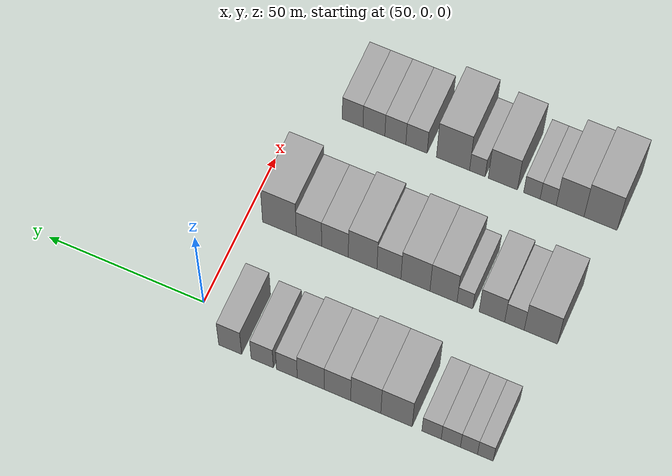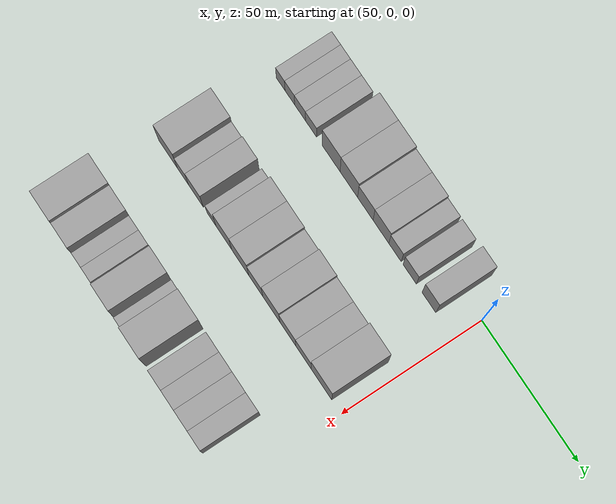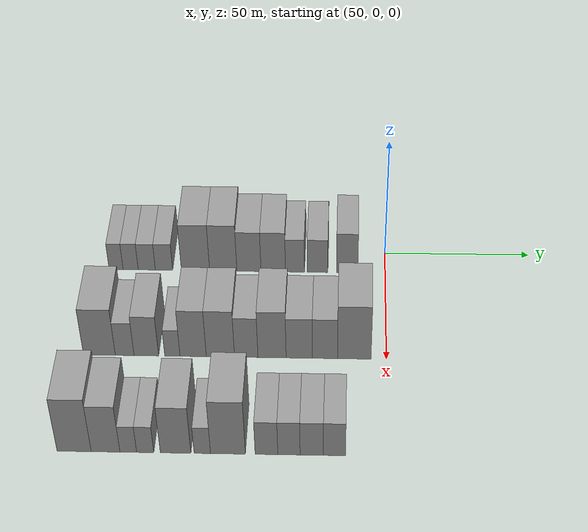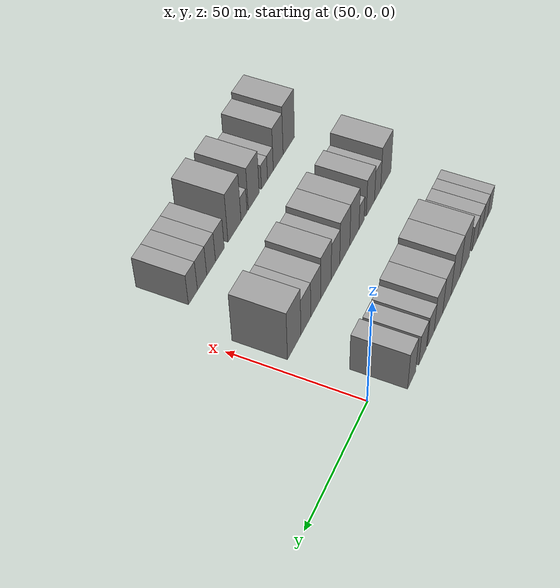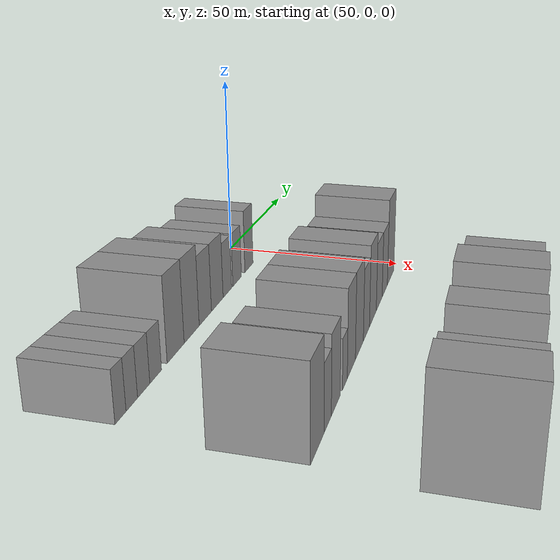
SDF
<sdf version="1.6">
 <world name="default">
  <model name="building_35">
   <static>1</static>
   <pose>50.0000 -92.8020 0 0.000000 0.000000 0.000000</pose>
   <link name="link">
    <pose>0 0 6.00 0 0 0</pose>
    <collision name="collision"><geometry><box><size>20.0000 4.8028 12.0000</size></box></geometry></collision>
    <visual name="visual">
     <cast_shadows>0</cast_shadows>
     <geometry><box><size>20.0000 4.8028 12.0000</size></box></geometry>
     <material>
      <script>
       <uri>model://grey_wall/materials/scripts</uri>
       <uri>model://grey_wall/materials/textures</uri>
       <name>vrc/grey_wall</name>
      </script>
     </material>
    </visual>
   </link>
  </model>
  <model name="building_36">
   <static>1</static>
   <pose>50.0000 -87.7829 0 0.000000 0.000000 0.000000</pose>
   <link name="link">
    <pose>0 0 6.00 0 0 0</pose>
    <collision name="collision"><geometry><box><size>20.0000 5.2355 12.0000</size></box></geometry></collision>
    <visual name="visual">
     <cast_shadows>0</cast_shadows>
     <geometry><box><size>20.0000 5.2355 12.0000</size></box></geometry>
     <material>
      <script>
       <uri>model://grey_wall/materials/scripts</uri>
       <uri>model://grey_wall/materials/textures</uri>
       <name>vrc/grey_wall</name>
      </script>
     </material>
    </visual>
   </link>
  </model>
  <model name="building_37">
   <static>1</static>
   <pose>50.0000 -82.2030 0 0.000000 0.000000 0.000000</pose>
   <link name="link">
    <pose>0 0 6.00 0 0 0</pose>
    <collision name="collision"><geometry><box><size>20.0000 5.9243 12.0000</size></box></geometry></collision>
    <visual name="visual">
     <cast_shadows>0</cast_shadows>
     <geometry><box><size>20.0000 5.9243 12.0000</size></box></geometry>
     <material>
      <script>
       <uri>model://grey_wall/materials/scripts</uri>
       <uri>model://grey_wall/materials/textures</uri>
       <name>vrc/grey_wall</name>
      </script>
     </material>
    </visual>
   </link>
  </model>
  <model name="building_38">
   <static>1</static>
   <pose>50.0000 -76.2471 0 0.000000 0.000000 0.000000</pose>
   <link name="link">
    <pose>0 0 6.00 0 0 0</pose>
    <collision name="collision"><geometry><box><size>20.0000 5.9875 12.0000</size></box></geometry></collision>
    <visual name="visual">
     <cast_shadows>0</cast_shadows>
     <geometry><box><size>20.0000 5.9875 12.0000</size></box></geometry>
     <material>
      <script>
       <uri>model://grey_wall/materials/scripts</uri>
       <uri>model://grey_wall/materials/textures</uri>
       <name>vrc/grey_wall</name>
      </script>
     </material>
    </visual>
   </link>
  </model>
  <model name="building_39">
   <static>1</static>
   <pose>50.0000 -65.3838 0 0.000000 0.000000 0.000000</pose>
   <link name="link">
    <pose>0 0 10.50 0 0 0</pose>
    <collision name="collision"><geometry><box><size>20.0000 9.7389 21.0000</size></box></geometry></collision>
    <visual name="visual">
     <cast_shadows>0</cast_shadows>
     <geometry><box><size>20.0000 9.7389 21.0000</size></box></geometry>
     <material>
      <script>
       <uri>model://grey_wall/materials/scripts</uri>
       <uri>model://grey_wall/materials/textures</uri>
       <name>vrc/grey_wall</name>
      </script>
     </material>
    </visual>
   </link>
  </model>
  <model name="building_40">
   <static>1</static>
   <pose>50.0000 -55.8111 0 0.000000 0.000000 0.000000</pose>
   <link name="link">
    <pose>0 0 10.50 0 0 0</pose>
    <collision name="collision"><geometry><box><size>20.0000 9.4066 21.0000</size></box></geometry></collision>
    <visual name="visual">
     <cast_shadows>0</cast_shadows>
     <geometry><box><size>20.0000 9.4066 21.0000</size></box></geometry>
     <material>
      <script>
       <uri>model://grey_wall/materials/scripts</uri>
       <uri>model://grey_wall/materials/textures</uri>
       <name>vrc/grey_wall</name>
      </script>
     </material>
    </visual>
   </link>
  </model>
  <model name="building_41">
   <static>1</static>
   <pose>50.0000 -46.9540 0 0.000000 0.000000 0.000000</pose>
   <link name="link">
    <pose>0 0 9.00 0 0 0</pose>
    <collision name="collision"><geometry><box><size>20.0000 8.3075 18.0000</size></box></geometry></collision>
    <visual name="visual">
     <cast_shadows>0</cast_shadows>
     <geometry><box><size>20.0000 8.3075 18.0000</size></box></geometry>
     <material>
      <script>
       <uri>model://grey_wall/materials/scripts</uri>
       <uri>model://grey_wall/materials/textures</uri>
       <name>vrc/grey_wall</name>
      </script>
     </material>
    </visual>
   </link>
  </model>
  <model name="building_42">
   <static>1</static>
   <pose>50.0000 -38.5774 0 0.000000 0.000000 0.000000</pose>
   <link name="link">
    <pose>0 0 9.00 0 0 0</pose>
    <collision name="collision"><geometry><box><size>20.0000 8.4458 18.0000</size></box></geometry></collision>
    <visual name="visual">
     <cast_shadows>0</cast_shadows>
     <geometry><box><size>20.0000 8.4458 18.0000</size></box></geometry>
     <material>
      <script>
       <uri>model://grey_wall/materials/scripts</uri>
       <uri>model://grey_wall/materials/textures</uri>
       <name>vrc/grey_wall</name>
      </script>
     </material>
    </visual>
   </link>
  </model>
  <model name="building_43">
   <static>1</static>
   <pose>50.0000 -31.0797 0 0.000000 0.000000 0.000000</pose>
   <link name="link">
    <pose>0 0 7.50 0 0 0</pose>
    <collision name="collision"><geometry><box><size>20.0000 6.5497 15.0000</size></box></geometry></collision>
    <visual name="visual">
     <cast_shadows>0</cast_shadows>
     <geometry><box><size>20.0000 6.5497 15.0000</size></box></geometry>
     <material>
      <script>
       <uri>model://grey_wall/materials/scripts</uri>
       <uri>model://grey_wall/materials/textures</uri>
       <name>vrc/grey_wall</name>
      </script>
     </material>
    </visual>
   </link>
  </model>
  <model name="building_44">
   <static>1</static>
   <pose>50.0000 -23.2890 0 0.000000 0.000000 0.000000</pose>
   <link name="link">
    <pose>0 0 7.50 0 0 0</pose>
    <collision name="collision"><geometry><box><size>20.0000 7.0316 15.0000</size></box></geometry></collision>
    <visual name="visual">
     <cast_shadows>0</cast_shadows>
     <geometry><box><size>20.0000 7.0316 15.0000</size></box></geometry>
     <material>
      <script>
       <uri>model://grey_wall/materials/scripts</uri>
       <uri>model://grey_wall/materials/textures</uri>
       <name>vrc/grey_wall</name>
      </script>
     </material>
    </visual>
   </link>
  </model>
  <model name="building_45">
   <static>1</static>
   <pose>50.0000 -13.1310 0 0.000000 0.000000 0.000000</pose>
   <link name="link">
    <pose>0 0 9.00 0 0 0</pose>
    <collision name="collision"><geometry><box><size>20.0000 7.2844 18.0000</size></box></geometry></collision>
    <visual name="visual">
     <cast_shadows>0</cast_shadows>
     <geometry><box><size>20.0000 7.2844 18.0000</size></box></geometry>
     <material>
      <script>
       <uri>model://grey_wall/materials/scripts</uri>
       <uri>model://grey_wall/materials/textures</uri>
       <name>vrc/grey_wall</name>
      </script>
     </material>
    </visual>
   </link>
  </model>
  <model name="building_121">
   <static>1</static>
   <pose>90.0000 -93.4156 0 0.000000 0.000000 0.000000</pose>
   <link name="link">
    <pose>0 0 10.50 0 0 0</pose>
    <collision name="collision"><geometry><box><size>20.0000 10.3990 21.0000</size></box></geometry></collision>
    <visual name="visual">
     <cast_shadows>0</cast_shadows>
     <geometry><box><size>20.0000 10.3990 21.0000</size></box></geometry>
     <material>
      <script>
       <uri>model://grey_wall/materials/scripts</uri>
       <uri>model://grey_wall/materials/textures</uri>
       <name>vrc/grey_wall</name>
      </script>
     </material>
    </visual>
   </link>
  </model>
  <model name="building_122">
   <static>1</static>
   <pose>90.0000 -85.1647 0 0.000000 0.000000 0.000000</pose>
   <link name="link">
    <pose>0 0 7.50 0 0 0</pose>
    <collision name="collision"><geometry><box><size>20.0000 6.1029 15.0000</size></box></geometry></collision>
    <visual name="visual">
     <cast_shadows>0</cast_shadows>
     <geometry><box><size>20.0000 6.1029 15.0000</size></box></geometry>
     <material>
      <script>
       <uri>model://grey_wall/materials/scripts</uri>
       <uri>model://grey_wall/materials/textures</uri>
       <name>vrc/grey_wall</name>
      </script>
     </material>
    </visual>
   </link>
  </model>
  <model name="building_123">
   <static>1</static>
   <pose>90.0000 -78.1053 0 0.000000 0.000000 0.000000</pose>
   <link name="link">
    <pose>0 0 9.00 0 0 0</pose>
    <collision name="collision"><geometry><box><size>20.0000 8.0158 18.0000</size></box></geometry></collision>
    <visual name="visual">
     <cast_shadows>0</cast_shadows>
     <geometry><box><size>20.0000 8.0158 18.0000</size></box></geometry>
     <material>
      <script>
       <uri>model://grey_wall/materials/scripts</uri>
       <uri>model://grey_wall/materials/textures</uri>
       <name>vrc/grey_wall</name>
      </script>
     </material>
    </visual>
   </link>
  </model>
  <model name="building_124">
   <static>1</static>
   <pose>90.0000 -69.6190 0 0.000000 0.000000 0.000000</pose>
   <link name="link">
    <pose>0 0 6.00 0 0 0</pose>
    <collision name="collision"><geometry><box><size>20.0000 4.9568 12.0000</size></box></geometry></collision>
    <visual name="visual">
     <cast_shadows>0</cast_shadows>
     <geometry><box><size>20.0000 4.9568 12.0000</size></box></geometry>
     <material>
      <script>
       <uri>model://grey_wall/materials/scripts</uri>
       <uri>model://grey_wall/materials/textures</uri>
       <name>vrc/grey_wall</name>
      </script>
     </material>
    </visual>
   </link>
  </model>
  <model name="building_125">
   <static>1</static>
   <pose>90.0000 -62.8625 0 0.000000 0.000000 0.000000</pose>
   <link name="link">
    <pose>0 0 10.50 0 0 0</pose>
    <collision name="collision"><geometry><box><size>20.0000 8.5563 21.0000</size></box></geometry></collision>
    <visual name="visual">
     <cast_shadows>0</cast_shadows>
     <geometry><box><size>20.0000 8.5563 21.0000</size></box></geometry>
     <material>
      <script>
       <uri>model://grey_wall/materials/scripts</uri>
       <uri>model://grey_wall/materials/textures</uri>
       <name>vrc/grey_wall</name>
      </script>
     </material>
    </visual>
   </link>
  </model>
  <model name="building_126">
   <static>1</static>
   <pose>90.0000 -53.9871 0 0.000000 0.000000 0.000000</pose>
   <link name="link">
    <pose>0 0 10.50 0 0 0</pose>
    <collision name="collision"><geometry><box><size>20.0000 9.1945 21.0000</size></box></geometry></collision>
    <visual name="visual">
     <cast_shadows>0</cast_shadows>
     <geometry><box><size>20.0000 9.1945 21.0000</size></box></geometry>
     <material>
      <script>
       <uri>model://grey_wall/materials/scripts</uri>
       <uri>model://grey_wall/materials/textures</uri>
       <name>vrc/grey_wall</name>
      </script>
     </material>
    </visual>
   </link>
  </model>
  <model name="building_127">
   <static>1</static>
   <pose>90.0000 -45.5771 0 0.000000 0.000000 0.000000</pose>
   <link name="link">
    <pose>0 0 9.00 0 0 0</pose>
    <collision name="collision"><geometry><box><size>20.0000 7.6255 18.0000</size></box></geometry></collision>
    <visual name="visual">
     <cast_shadows>0</cast_shadows>
     <geometry><box><size>20.0000 7.6255 18.0000</size></box></geometry>
     <material>
      <script>
       <uri>model://grey_wall/materials/scripts</uri>
       <uri>model://grey_wall/materials/textures</uri>
       <name>vrc/grey_wall</name>
      </script>
     </material>
    </visual>
   </link>
  </model>
  <model name="building_128">
   <static>1</static>
   <pose>90.0000 -37.1855 0 0.000000 0.000000 0.000000</pose>
   <link name="link">
    <pose>0 0 10.50 0 0 0</pose>
    <collision name="collision"><geometry><box><size>20.0000 9.1577 21.0000</size></box></geometry></collision>
    <visual name="visual">
     <cast_shadows>0</cast_shadows>
     <geometry><box><size>20.0000 9.1577 21.0000</size></box></geometry>
     <material>
      <script>
       <uri>model://grey_wall/materials/scripts</uri>
       <uri>model://grey_wall/materials/textures</uri>
       <name>vrc/grey_wall</name>
      </script>
     </material>
    </visual>
   </link>
  </model>
  <model name="building_129">
   <static>1</static>
   <pose>90.0000 -28.3389 0 0.000000 0.000000 0.000000</pose>
   <link name="link">
    <pose>0 0 9.00 0 0 0</pose>
    <collision name="collision"><geometry><box><size>20.0000 8.5354 18.0000</size></box></geometry></collision>
    <visual name="visual">
     <cast_shadows>0</cast_shadows>
     <geometry><box><size>20.0000 8.5354 18.0000</size></box></geometry>
     <material>
      <script>
       <uri>model://grey_wall/materials/scripts</uri>
       <uri>model://grey_wall/materials/textures</uri>
       <name>vrc/grey_wall</name>
      </script>
     </material>
    </visual>
   </link>
  </model>
  <model name="building_130">
   <static>1</static>
   <pose>90.0000 -19.9987 0 0.000000 0.000000 0.000000</pose>
   <link name="link">
    <pose>0 0 9.00 0 0 0</pose>
    <collision name="collision"><geometry><box><size>20.0000 8.1452 18.0000</size></box></geometry></collision>
    <visual name="visual">
     <cast_shadows>0</cast_shadows>
     <geometry><box><size>20.0000 8.1452 18.0000</size></box></geometry>
     <material>
      <script>
       <uri>model://grey_wall/materials/scripts</uri>
       <uri>model://grey_wall/materials/textures</uri>
       <name>vrc/grey_wall</name>
      </script>
     </material>
    </visual>
   </link>
  </model>
  <model name="building_131">
   <static>1</static>
   <pose>90.0000 -10.4843 0 0.000000 0.000000 0.000000</pose>
   <link name="link">
    <pose>0 0 12.00 0 0 0</pose>
    <collision name="collision"><geometry><box><size>20.0000 10.8834 24.0000</size></box></geometry></collision>
    <visual name="visual">
     <cast_shadows>0</cast_shadows>
     <geometry><box><size>20.0000 10.8834 24.0000</size></box></geometry>
     <material>
      <script>
       <uri>model://grey_wall/materials/scripts</uri>
       <uri>model://grey_wall/materials/textures</uri>
       <name>vrc/grey_wall</name>
      </script>
     </material>
    </visual>
   </link>
  </model>
  <model name="building_207">
   <static>1</static>
   <pose>130.0000 -96.0289 0 0.000000 0.000000 0.000000</pose>
   <link name="link">
    <pose>0 0 12.00 0 0 0</pose>
    <collision name="collision"><geometry><box><size>20.0000 10.4771 24.0000</size></box></geometry></collision>
    <visual name="visual">
     <cast_shadows>0</cast_shadows>
     <geometry><box><size>20.0000 10.4771 24.0000</size></box></geometry>
     <material>
      <script>
       <uri>model://grey_wall/materials/scripts</uri>
       <uri>model://grey_wall/materials/textures</uri>
       <name>vrc/grey_wall</name>
      </script>
     </material>
    </visual>
   </link>
  </model>
  <model name="building_208">
   <static>1</static>
   <pose>130.0000 -86.3805 0 0.000000 0.000000 0.000000</pose>
   <link name="link">
    <pose>0 0 10.50 0 0 0</pose>
    <collision name="collision"><geometry><box><size>20.0000 8.8195 21.0000</size></box></geometry></collision>
    <visual name="visual">
     <cast_shadows>0</cast_shadows>
     <geometry><box><size>20.0000 8.8195 21.0000</size></box></geometry>
     <material>
      <script>
       <uri>model://grey_wall/materials/scripts</uri>
       <uri>model://grey_wall/materials/textures</uri>
       <name>vrc/grey_wall</name>
      </script>
     </material>
    </visual>
   </link>
  </model>
  <model name="building_209">
   <static>1</static>
   <pose>130.0000 -79.4064 0 0.000000 0.000000 0.000000</pose>
   <link name="link">
    <pose>0 0 6.00 0 0 0</pose>
    <collision name="collision"><geometry><box><size>20.0000 5.1288 12.0000</size></box></geometry></collision>
    <visual name="visual">
     <cast_shadows>0</cast_shadows>
     <geometry><box><size>20.0000 5.1288 12.0000</size></box></geometry>
     <material>
      <script>
       <uri>model://grey_wall/materials/scripts</uri>
       <uri>model://grey_wall/materials/textures</uri>
       <name>vrc/grey_wall</name>
      </script>
     </material>
    </visual>
   </link>
  </model>
  <model name="building_210">
   <static>1</static>
   <pose>130.0000 -74.2174 0 0.000000 0.000000 0.000000</pose>
   <link name="link">
    <pose>0 0 6.00 0 0 0</pose>
    <collision name="collision"><geometry><box><size>20.0000 5.2493 12.0000</size></box></geometry></collision>
    <visual name="visual">
     <cast_shadows>0</cast_shadows>
     <geometry><box><size>20.0000 5.2493 12.0000</size></box></geometry>
     <material>
      <script>
       <uri>model://grey_wall/materials/scripts</uri>
       <uri>model://grey_wall/materials/textures</uri>
       <name>vrc/grey_wall</name>
      </script>
     </material>
    </visual>
   </link>
  </model>
  <model name="building_211">
   <static>1</static>
   <pose>130.0000 -64.9161 0 0.000000 0.000000 0.000000</pose>
   <link name="link">
    <pose>0 0 10.50 0 0 0</pose>
    <collision name="collision"><geometry><box><size>20.0000 9.3532 21.0000</size></box></geometry></collision>
    <visual name="visual">
     <cast_shadows>0</cast_shadows>
     <geometry><box><size>20.0000 9.3532 21.0000</size></box></geometry>
     <material>
      <script>
       <uri>model://grey_wall/materials/scripts</uri>
       <uri>model://grey_wall/materials/textures</uri>
       <name>vrc/grey_wall</name>
      </script>
     </material>
    </visual>
   </link>
  </model>
  <model name="building_212">
   <static>1</static>
   <pose>130.0000 -56.7356 0 0.000000 0.000000 0.000000</pose>
   <link name="link">
    <pose>0 0 6.00 0 0 0</pose>
    <collision name="collision"><geometry><box><size>20.0000 5.0079 12.0000</size></box></geometry></collision>
    <visual name="visual">
     <cast_shadows>0</cast_shadows>
     <geometry><box><size>20.0000 5.0079 12.0000</size></box></geometry>
     <material>
      <script>
       <uri>model://grey_wall/materials/scripts</uri>
       <uri>model://grey_wall/materials/textures</uri>
       <name>vrc/grey_wall</name>
      </script>
     </material>
    </visual>
   </link>
  </model>
  <model name="building_213">
   <static>1</static>
   <pose>130.0000 -48.8933 0 0.000000 0.000000 0.000000</pose>
   <link name="link">
    <pose>0 0 12.00 0 0 0</pose>
    <collision name="collision"><geometry><box><size>20.0000 10.6766 24.0000</size></box></geometry></collision>
    <visual name="visual">
     <cast_shadows>0</cast_shadows>
     <geometry><box><size>20.0000 10.6766 24.0000</size></box></geometry>
     <material>
      <script>
       <uri>model://grey_wall/materials/scripts</uri>
       <uri>model://grey_wall/materials/textures</uri>
       <name>vrc/grey_wall</name>
      </script>
     </material>
    </visual>
   </link>
  </model>
  <model name="building_214">
   <static>1</static>
   <pose>130.0000 -37.0915 0 0.000000 0.000000 0.000000</pose>
   <link name="link">
    <pose>0 0 7.50 0 0 0</pose>
    <collision name="collision"><geometry><box><size>20.0000 6.9271 15.0000</size></box></geometry></collision>
    <visual name="visual">
     <cast_shadows>0</cast_shadows>
     <geometry><box><size>20.0000 6.9271 15.0000</size></box></geometry>
     <material>
      <script>
       <uri>model://grey_wall/materials/scripts</uri>
       <uri>model://grey_wall/materials/textures</uri>
       <name>vrc/grey_wall</name>
      </script>
     </material>
    </visual>
   </link>
  </model>
  <model name="building_215">
   <static>1</static>
   <pose>130.0000 -30.2226 0 0.000000 0.000000 0.000000</pose>
   <link name="link">
    <pose>0 0 7.50 0 0 0</pose>
    <collision name="collision"><geometry><box><size>20.0000 6.8108 15.0000</size></box></geometry></collision>
    <visual name="visual">
     <cast_shadows>0</cast_shadows>
     <geometry><box><size>20.0000 6.8108 15.0000</size></box></geometry>
     <material>
      <script>
       <uri>model://grey_wall/materials/scripts</uri>
       <uri>model://grey_wall/materials/textures</uri>
       <name>vrc/grey_wall</name>
      </script>
     </material>
    </visual>
   </link>
  </model>
  <model name="building_216">
   <static>1</static>
   <pose>130.0000 -23.2544 0 0.000000 0.000000 0.000000</pose>
   <link name="link">
    <pose>0 0 7.50 0 0 0</pose>
    <collision name="collision"><geometry><box><size>20.0000 7.1256 15.0000</size></box></geometry></collision>
    <visual name="visual">
     <cast_shadows>0</cast_shadows>
     <geometry><box><size>20.0000 7.1256 15.0000</size></box></geometry>
     <material>
      <script>
       <uri>model://grey_wall/materials/scripts</uri>
       <uri>model://grey_wall/materials/textures</uri>
       <name>vrc/grey_wall</name>
      </script>
     </material>
    </visual>
   </link>
  </model>
  <model name="building_217">
   <static>1</static>
   <pose>130.0000 -16.3145 0 0.000000 0.000000 0.000000</pose>
   <link name="link">
    <pose>0 0 7.50 0 0 0</pose>
    <collision name="collision"><geometry><box><size>20.0000 6.7543 15.0000</size></box></geometry></collision>
    <visual name="visual">
     <cast_shadows>0</cast_shadows>
     <geometry><box><size>20.0000 6.7543 15.0000</size></box></geometry>
     <material>
      <script>
       <uri>model://grey_wall/materials/scripts</uri>
       <uri>model://grey_wall/materials/textures</uri>
       <name>vrc/grey_wall</name>
      </script>
     </material>
    </visual>
   </link>
  </model>
 </world>
</sdf>
